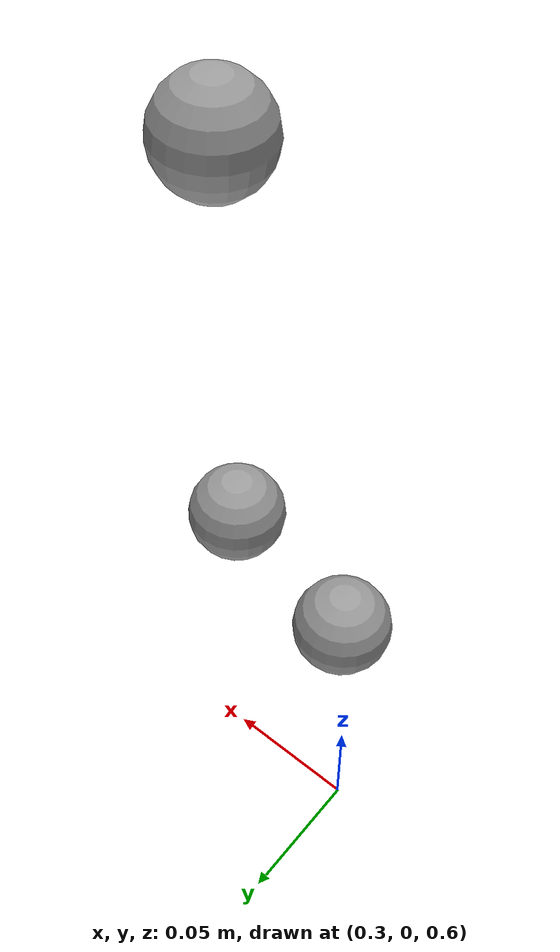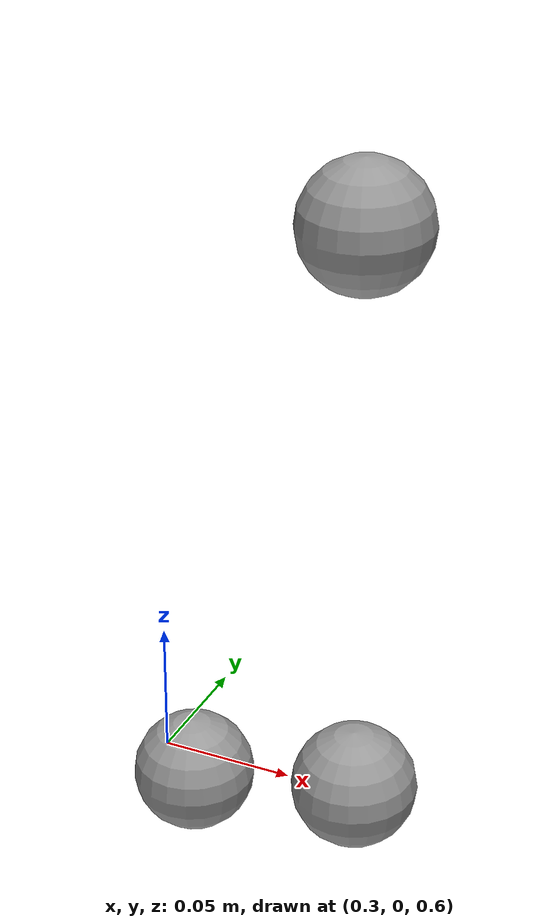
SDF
<sdf version="1.6">
 <world name="default">
  <model name="ground_plane">
   <static>1</static>
   <link name="link">
    <collision name="collision">
     <geometry><plane><normal>0 0 1</normal><size>100 100</size></plane></geometry>
     <surface><friction><ode><mu>100</mu><mu2>50</mu2></ode></friction></surface>
    </collision>
    <visual name="visual">
     <cast_shadows>0</cast_shadows>
     <geometry><plane><normal>0 0 1</normal><size>100 100</size></plane></geometry>
     <material>
      <script><uri>file://media/materials/scripts/gazebo.material</uri><name>Gazebo/Grey</name></script>
     </material>
    </visual>
   </link>
  </model>
  <model name="unit_sphere2_0_4">
   <link name="unit_sphere2_0::link">
    <pose>0 -0.112454 0.338599 0.048323 -0 0</pose>
    <inertial>
     <mass>0.00136338</mass>
     <inertia>
      <ixx>1.68e-06</ixx>
      <ixy>0</ixy>
      <ixz>0</ixz>
      <iyy>1.68e-06</iyy>
      <iyz>0</iyz>
      <izz>1.68e-06</izz>
     </inertia>
    </inertial>
    <gravity>0</gravity>
    <visual name="visual">
     <geometry><sphere><radius>0.0208715</radius></sphere></geometry>
     <material>
      <script><name>Gazebo/Grey</name><uri>file://media/materials/scripts/gazebo.material</uri></script>
      <ambient>0.3 0.3 0.3 1</ambient>
      <diffuse>0.7 0.7 0.7 1</diffuse>
      <specular>0.01 0.01 0.01 1</specular>
      <emissive>0 0 0 1</emissive>
      <shader type="vertex"><normal_map>__default__</normal_map></shader>
     </material>
     <transparency>0.1</transparency>
    </visual>
   </link>
   <static>0</static>
   <pose>0.33608 0.064697 0.291718 0 -0 0</pose>
  </model>
  <model name="unit_sphere2_0">
   <link name="unit_sphere2_0::link">
    <pose>0 -0.112454 0.338599 0.048323 -0 0</pose>
    <inertial>
     <mass>0.00136338</mass>
     <inertia>
      <ixx>1.68e-06</ixx>
      <ixy>0</ixy>
      <ixz>0</ixz>
      <iyy>1.68e-06</iyy>
      <iyz>0</iyz>
      <izz>1.68e-06</izz>
     </inertia>
    </inertial>
    <gravity>0</gravity>
    <visual name="visual">
     <geometry><sphere><radius>0.0208715</radius></sphere></geometry>
     <material>
      <script><name>Gazebo/Grey</name><uri>file://media/materials/scripts/gazebo.material</uri></script>
      <ambient>0.3 0.3 0.3 1</ambient>
      <diffuse>0.7 0.7 0.7 1</diffuse>
      <specular>0.01 0.01 0.01 1</specular>
      <emissive>0 0 0 1</emissive>
      <shader type="vertex"><normal_map>__default__</normal_map></shader>
     </material>
     <transparency>0.1</transparency>
    </visual>
   </link>
   <static>0</static>
   <pose>0.398888 0.057493 0.309428 0 -0 0</pose>
  </model>
  <model name="unit_sphere2_0_1">
   <link name="unit_sphere2_0::link">
    <pose>0 -0.112454 0.338599 0.048323 -0 0</pose>
    <inertial>
     <mass>0.00136338</mass>
     <inertia>
      <ixx>1.68e-06</ixx>
      <ixy>0</ixy>
      <ixz>0</ixz>
      <iyy>1.68e-06</iyy>
      <iyz>0</iyz>
      <izz>1.68e-06</izz>
     </inertia>
    </inertial>
    <gravity>0</gravity>
    <visual name="visual">
     <geometry><sphere><radius>0.0208715</radius></sphere></geometry>
     <material>
      <script><name>Gazebo/Grey</name><uri>file://media/materials/scripts/gazebo.material</uri></script>
      <ambient>0.3 0.3 0.3 1</ambient>
      <diffuse>0.7 0.7 0.7 1</diffuse>
      <specular>0.01 0.01 0.01 1</specular>
      <emissive>0 0 0 1</emissive>
      <shader type="vertex"><normal_map>__default__</normal_map></shader>
     </material>
     <transparency>0.1</transparency>
    </visual>
   </link>
   <static>0</static>
   <pose>0.397409 0.060016 0.502799 0 -0 0</pose>
  </model>
 </world>
</sdf>
